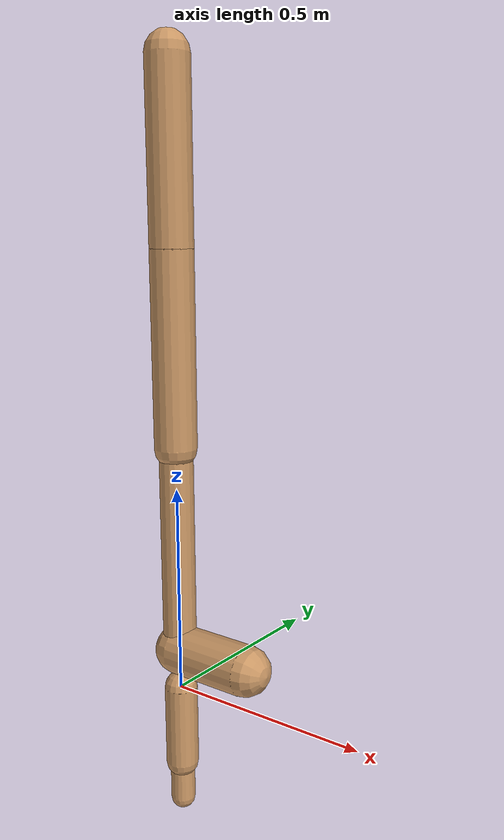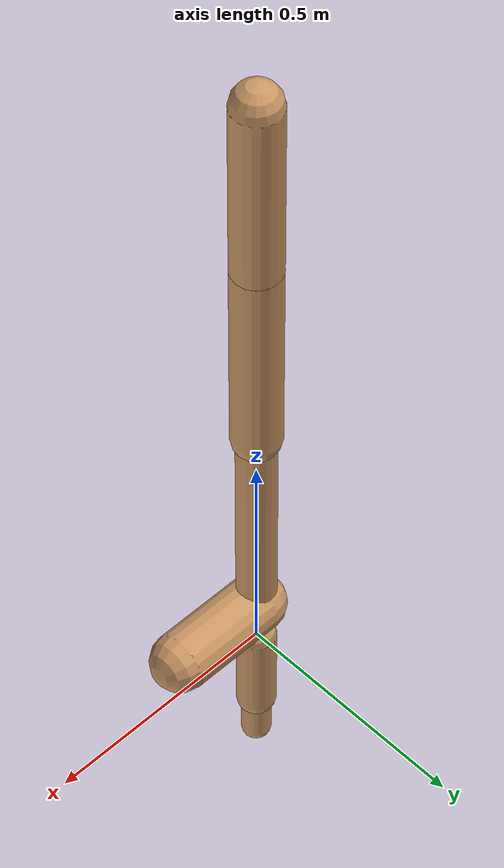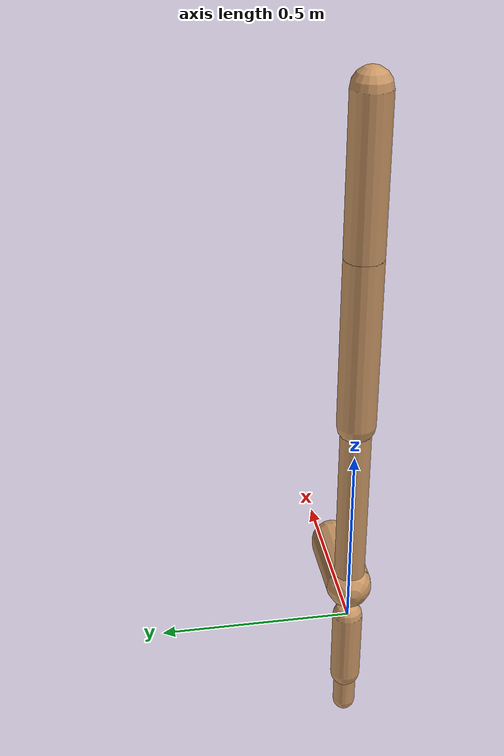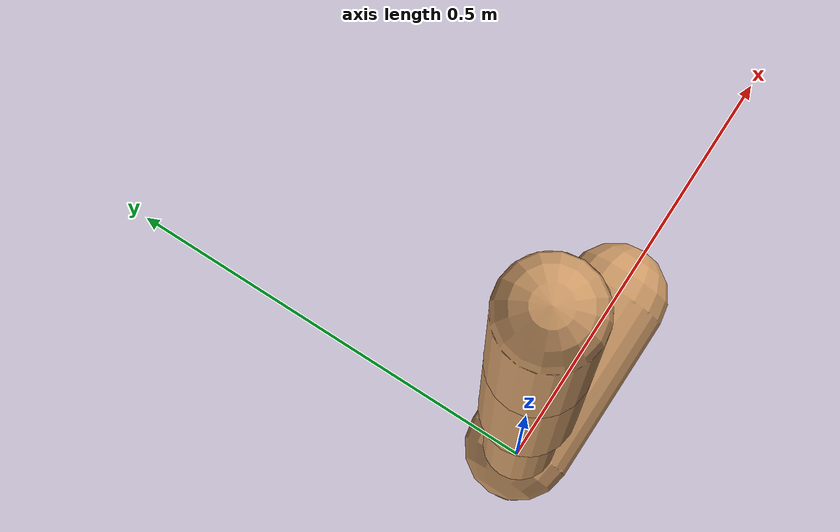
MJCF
<!--vanilla walker2d from pybullet-->
<!--add two arbitrary arms-->
<mujoco model="walker2d">
    <compiler angle="degree" coordinate="global" inertiafromgeom="true"/>
    <default>
      <joint armature="0.01" damping=".1" limited="true"/>
      <geom conaffinity="0" condim="3" contype="1" density="1000" friction="0.8 .1 .1" rgba="0.8 0.6 .4 1"/>
    </default>
    <option integrator="RK4" timestep="0.002"/>
    <worldbody>
      <!-- CHANGES: see hopper.xml -->
      <body name="torso">
        <joint armature="0" axis="1 0 0" damping="0" limited="false" name="ignorex" pos="0 0 0" stiffness="0" type="slide"/>
        <joint armature="0" axis="0 0 1" damping="0" limited="false" name="ignorez" pos="0 0 0" ref="1.25" stiffness="0" type="slide"/>
        <joint armature="0" axis="0 1 0" damping="0" limited="false" name="ignorey" pos="0 0 0" stiffness="0" type="hinge"/>
        <geom fromto="0 0 1.45 0 0 1.05" name="torso_geom" size="0.05" type="capsule"/>
        <body name="arm" pos="0 0 1.22">
          <joint axis="0 -1 0" name="arm_joint" pos="0 0 0" range="-60 30" type="hinge"/>
          <geom fromto="0 0 0 0 0 -0.2" name="arm_geom" size="0.04" type="capsule"/>
        </body>
        <body name="arm_left" pos="0 0 1.25">
          <joint axis="0 -1 0" name="arm_left_joint" pos="0 0 0" range="-50 60" type="hinge"/>
          <geom fromto="0 0 0 0 0 -0.3" name="arm_left_geom" size="0.03" type="capsule"/>
        </body>
        <body name="thigh">
          <joint axis="0 -1 0" name="thigh_joint" pos="0 0 1.05" range="-150 0" type="hinge"/>
          <geom fromto="0 0 1.05 0 0 0.6" name="thigh_geom" size="0.05" type="capsule"/>
          <body name="leg">
            <joint axis="0 -1 0" name="leg_joint" pos="0 0 0.6" range="-150 0" type="hinge"/>
            <geom fromto="0 0 0.6 0 0 0.1" name="leg_geom" size="0.04" type="capsule"/>
            <body name="foot">
              <joint axis="0 -1 0" name="foot_joint" pos="0 0 0.1" range="-45 45" type="hinge"/>
              <geom fromto="-0.0 0 0.1 0.2 0 0.1" name="foot_geom" size="0.06" type="capsule"/>
            </body>
          </body>
        </body>
        <!-- copied and then replace thigh->thigh_left, leg->leg_left, foot->foot_right -->
        <body name="thigh_left">
          <joint axis="0 -1 0" name="thigh_left_joint" pos="0 0 1.05" range="-150 0" type="hinge"/>
          <geom fromto="0 0 1.05 0 0 0.6" name="thigh_left_geom" rgba=".7 .3 .6 1" size="0.05" type="capsule"/>
          <body name="leg_left">
            <joint axis="0 -1 0" name="leg_left_joint" pos="0 0 0.6" range="-150 0" type="hinge"/>
            <geom fromto="0 0 0.6 0 0 0.1" name="leg_left_geom" rgba=".7 .3 .6 1" size="0.04" type="capsule"/>
            <body name="foot_left">
              <joint axis="0 -1 0" name="foot_left_joint" pos="0 0 0.1" range="-45 45" type="hinge"/>
              <geom fromto="-0.0 0 0.1 0.2 0 0.1" name="foot_left_geom" rgba=".7 .3 .6 1" size="0.06" type="capsule"/>
            </body>
          </body>
        </body>
      </body>
    </worldbody>
    <actuator>
      <motor ctrllimited="true" ctrlrange="-1.0 1.0" gear="100" joint="thigh_joint"/>
      <motor ctrllimited="true" ctrlrange="-1.0 1.0" gear="100" joint="leg_joint"/>
      <motor ctrllimited="true" ctrlrange="-1.0 1.0" gear="100" joint="foot_joint"/>
      <motor ctrllimited="true" ctrlrange="-1.0 1.0" gear="100" joint="thigh_left_joint"/>
      <motor ctrllimited="true" ctrlrange="-1.0 1.0" gear="100" joint="leg_left_joint"/>
      <motor ctrllimited="true" ctrlrange="-1.0 1.0" gear="100" joint="foot_left_joint"/>
    </actuator>
  </mujoco>
